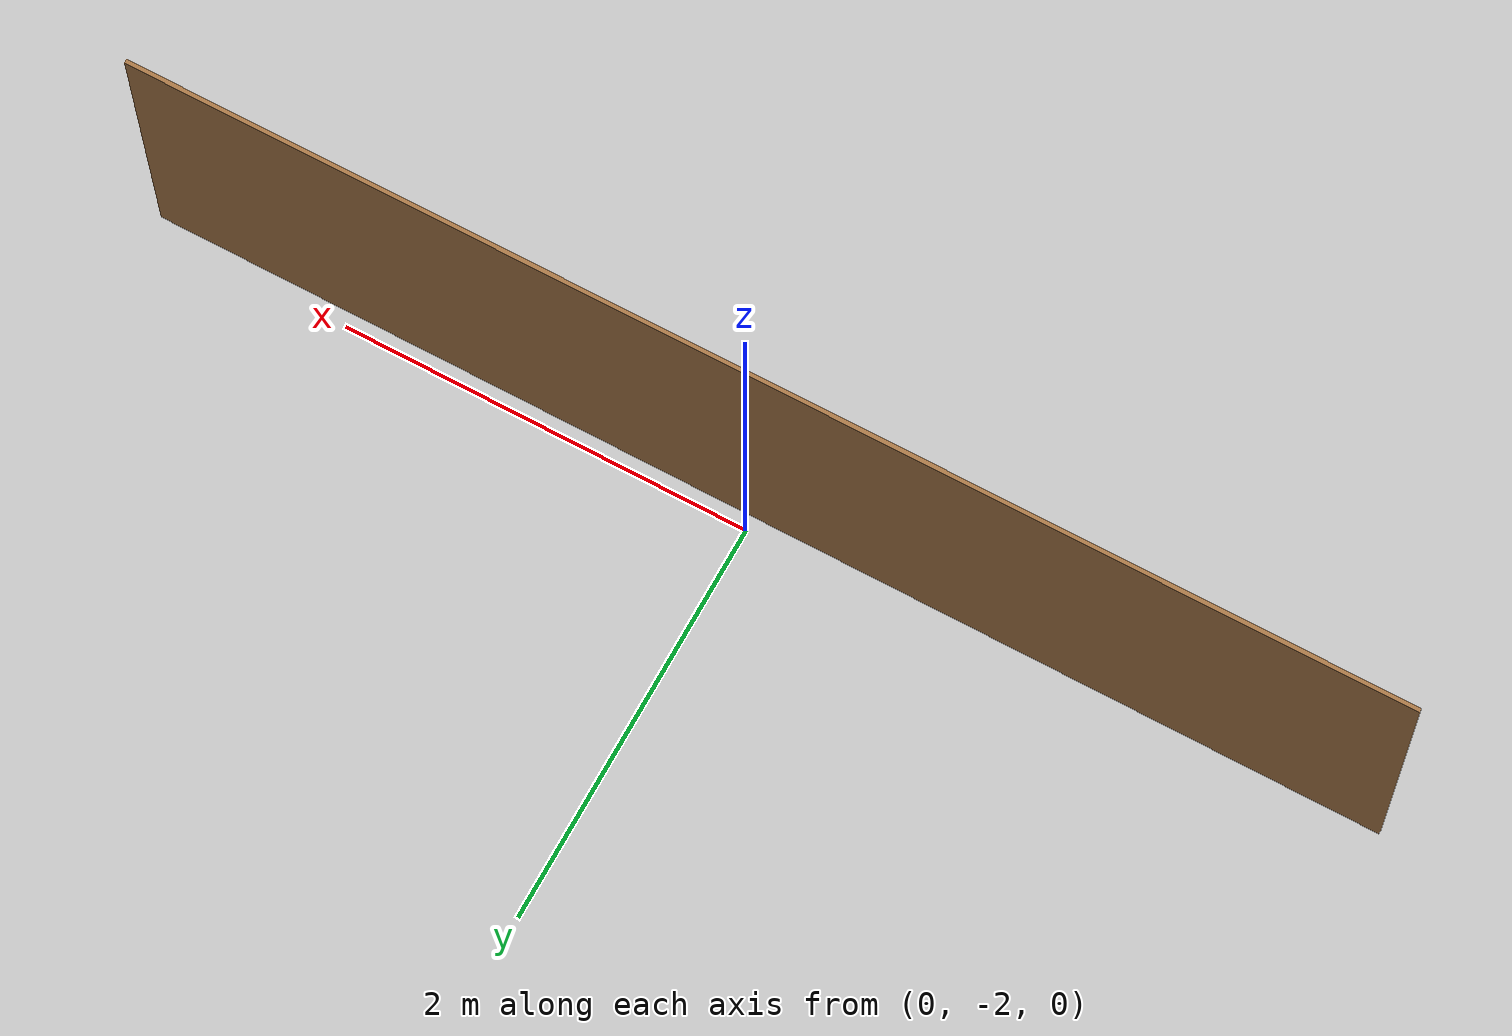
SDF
<?xml version='1.0'?>
<sdf version='1.6'>
  <model name='wall_1'>
    <pose frame=''>-0.01 -2.08 0 0 -0 0</pose>
    <link name='Wall_0'>
      <collision name='Wall_0_Collision'>
        <geometry>
          <box>
            <size>6 0.02 1.5</size>
          </box>
        </geometry>
        <pose frame=''>0 0 0.75 0 -0 0</pose>
      </collision>
      <visual name='Wall_0_Visual'>
        <pose frame=''>0 0 0.75 0 -0 0</pose>
        <geometry>
          <box>
            <size>6 0.02 1.5</size>
          </box>
        </geometry>
        <material>
          <script>
            <uri>file://media/materials/scripts/gazebo.material</uri>
            <name>Gazebo/Wood</name>
          </script>
          <ambient>1 1 1 1</ambient>
        </material>
        <meta>
          <layer>0</layer>
        </meta>
      </visual>
      <pose frame=''>-0 0 0 0 -0 0</pose>
    </link>
    <static>1</static>
  </model>
</sdf>
